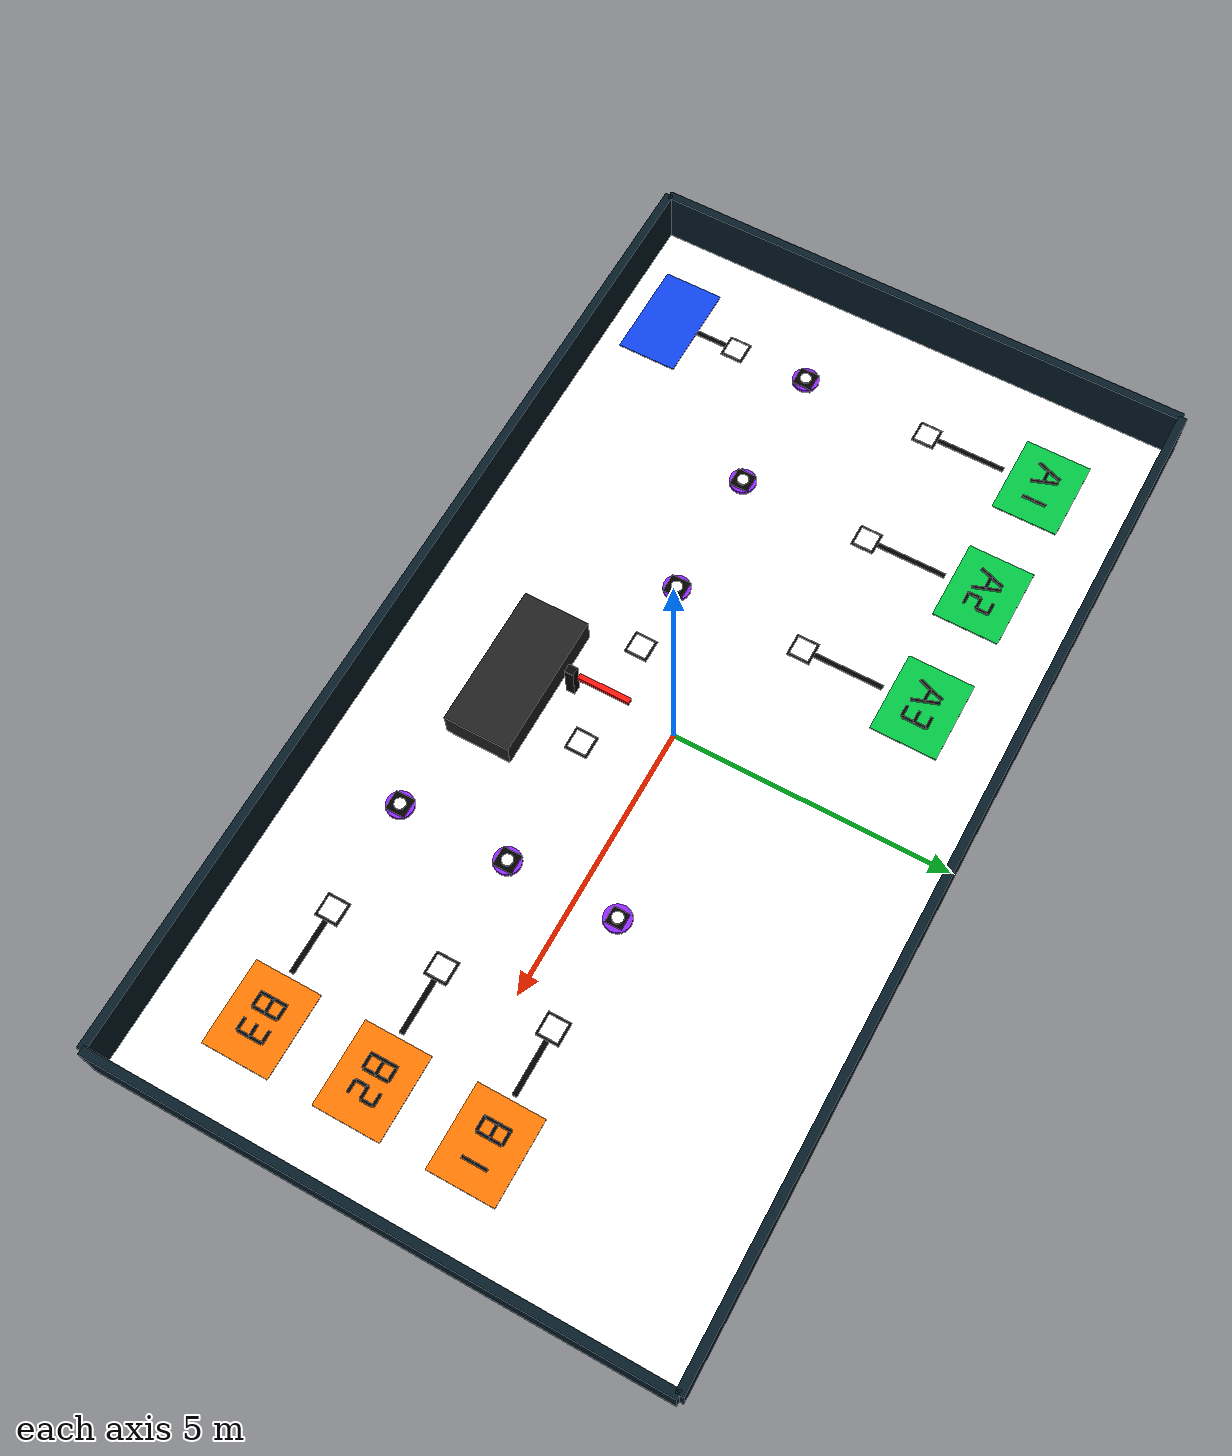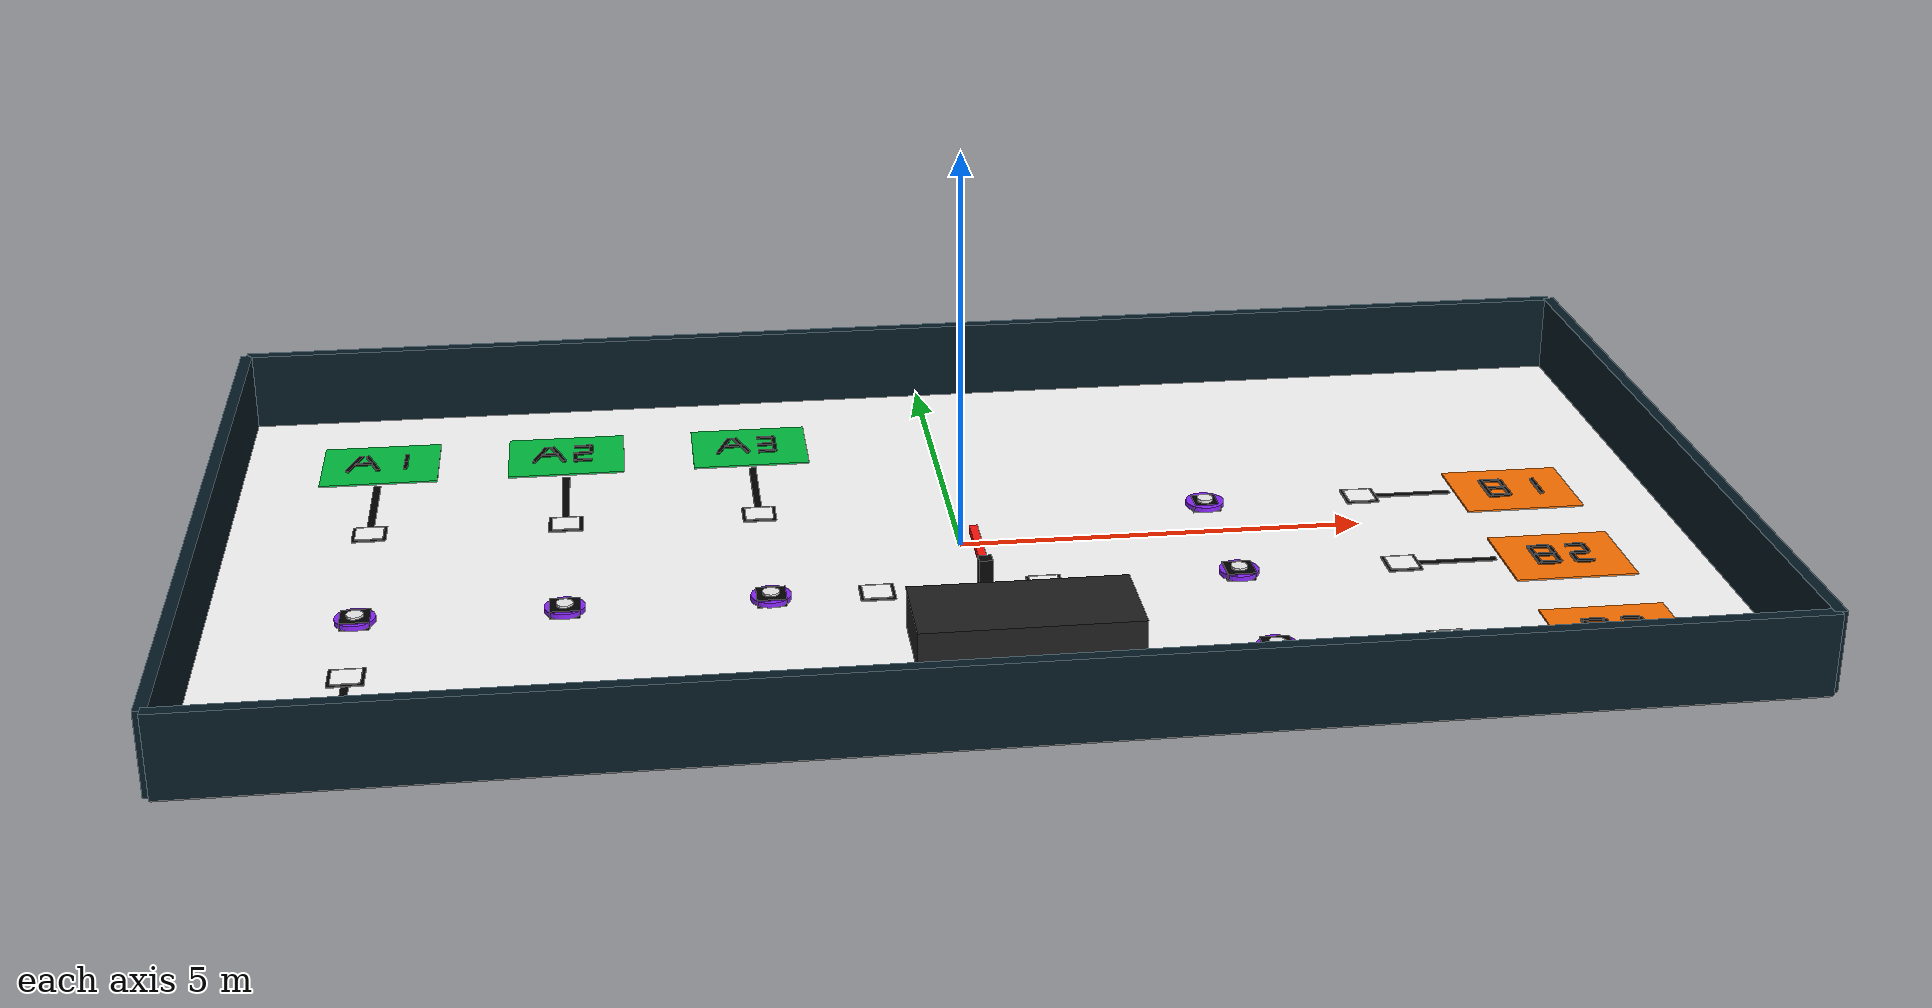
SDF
<?xml version="1.0" ?>
<sdf version="1.9">
  <world name="hamals_competition_world">
    <physics name="1ms" type="ignored">
      <max_step_size>0.001</max_step_size>
      <real_time_factor>1.0</real_time_factor>
    </physics>

    <plugin filename="gz-sim-physics-system" name="gz::sim::systems::Physics"/>
    <plugin filename="gz-sim-user-commands-system" name="gz::sim::systems::UserCommands"/>
    <plugin filename="gz-sim-scene-broadcaster-system" name="gz::sim::systems::SceneBroadcaster"/>

    <scene>
      <ambient>0.75 0.75 0.75 1</ambient>
      <background>0.85 0.85 0.85 1</background>
      <shadows>true</shadows>
    </scene>

    <light type="directional" name="sun">
      <cast_shadows>true</cast_shadows>
      <pose>0 0 10 0 0 0</pose>
      <diffuse>0.8 0.8 0.8 1</diffuse>
      <specular>0.2 0.2 0.2 1</specular>
      <attenuation>
        <range>1000</range>
        <constant>0.9</constant>
        <linear>0.01</linear>
        <quadratic>0.001</quadratic>
      </attenuation>
      <direction>-0.5 0.1 -0.9</direction>
    </light>

    <!-- ================= MATERIALS ================= -->
    <model name="materials_reference">
      <static>true</static>
      <link name="dummy"/>
    </model>

    <!-- ================= FLOOR ================= -->
    <model name="competition_floor">
      <static>true</static>
      <pose>0 0 -0.025 0 0 0</pose>
      <link name="link">
        <collision name="collision">
          <geometry>
            <box><size>18 10 0.05</size></box>
          </geometry>
        </collision>
        <visual name="visual">
          <geometry>
            <box><size>18 10 0.05</size></box>
          </geometry>
          <material>
            <ambient>1.0 1.0 1.0 1</ambient>
            <diffuse>1.0 1.0 1.0 1</diffuse>
          </material>
        </visual>
      </link>
    </model>

    <!-- ================= OUTER WALLS ================= -->
    <model name="outer_wall_north">
      <static>true</static>
      <pose>0 5 0.5 0 0 0</pose>
      <link name="link">
        <collision name="collision"><geometry><box><size>18 0.15 1</size></box></geometry></collision>
        <visual name="visual"><geometry><box><size>18 0.15 1</size></box></geometry>
          <material><ambient>0.02 0.10 0.14 1</ambient><diffuse>0.02 0.10 0.14 1</diffuse></material>
        </visual>
      </link>
    </model>

    <model name="outer_wall_south">
      <static>true</static>
      <pose>0 -5 0.5 0 0 0</pose>
      <link name="link">
        <collision name="collision"><geometry><box><size>18 0.15 1</size></box></geometry></collision>
        <visual name="visual"><geometry><box><size>18 0.15 1</size></box></geometry>
          <material><ambient>0.02 0.10 0.14 1</ambient><diffuse>0.02 0.10 0.14 1</diffuse></material>
        </visual>
      </link>
    </model>

    <model name="outer_wall_west">
      <static>true</static>
      <pose>-9 0 0.5 0 0 0</pose>
      <link name="link">
        <collision name="collision"><geometry><box><size>0.15 10 1</size></box></geometry></collision>
        <visual name="visual"><geometry><box><size>0.15 10 1</size></box></geometry>
          <material><ambient>0.02 0.10 0.14 1</ambient><diffuse>0.02 0.10 0.14 1</diffuse></material>
        </visual>
      </link>
    </model>

    <model name="outer_wall_east">
      <static>true</static>
      <pose>9 0 0.5 0 0 0</pose>
      <link name="link">
        <collision name="collision"><geometry><box><size>0.15 10 1</size></box></geometry></collision>
        <visual name="visual"><geometry><box><size>0.15 10 1</size></box></geometry>
          <material><ambient>0.02 0.10 0.14 1</ambient><diffuse>0.02 0.10 0.14 1</diffuse></material>
        </visual>
      </link>
    </model>

    <!-- ================= WHITE ROUTE LINES, NOT DASHED ================= -->
    <!-- Left vertical route -->

    <!-- Middle horizontal route -->

    <!-- A2 and A3 branches -->

    <!-- Right vertical route -->

    <!-- B branches -->

    <!-- ================= START / PICKUP / DROP AREAS ================= -->
    <!-- Start area: blue -->
    <model name="start_area">
      <static>true</static>
      <pose>-7.2 -4.0 0.01 0 0 0</pose>
      <link name="link">
        <collision name="collision"><geometry><box><size>1.8 1.1 0.02</size></box></geometry></collision>
        <visual name="visual"><geometry><box><size>1.8 1.1 0.02</size></box></geometry>
          <material><ambient>0.05 0.25 0.9 1</ambient><diffuse>0.05 0.25 0.9 1</diffuse></material>
        </visual>
      </link>
    </model>

    <!-- Pickup areas A1-A3: green -->
    <model name="pickup_A1">
      <static>true</static>
      <pose>-7.2 3.35 0.01 0 0 0</pose>
      <link name="link">
        <collision name="collision"><geometry><box><size>1.5 1.2 0.02</size></box></geometry></collision>
        <visual name="visual"><geometry><box><size>1.5 1.2 0.02</size></box></geometry>
          <material><ambient>0.0 0.75 0.25 1</ambient><diffuse>0.0 0.75 0.25 1</diffuse></material>
        </visual>
      </link>
    </model>

    <model name="pickup_A2">
      <static>true</static>
      <pose>-4.8 3.35 0.01 0 0 0</pose>
      <link name="link">
        <collision name="collision"><geometry><box><size>1.5 1.2 0.02</size></box></geometry></collision>
        <visual name="visual"><geometry><box><size>1.5 1.2 0.02</size></box></geometry>
          <material><ambient>0.0 0.75 0.25 1</ambient><diffuse>0.0 0.75 0.25 1</diffuse></material>
        </visual>
      </link>
    </model>

    <model name="pickup_A3">
      <static>true</static>
      <pose>-2.4 3.35 0.01 0 0 0</pose>
      <link name="link">
        <collision name="collision"><geometry><box><size>1.5 1.2 0.02</size></box></geometry></collision>
        <visual name="visual"><geometry><box><size>1.5 1.2 0.02</size></box></geometry>
          <material><ambient>0.0 0.75 0.25 1</ambient><diffuse>0.0 0.75 0.25 1</diffuse></material>
        </visual>
      </link>
    </model>

    <!-- Drop areas B1-B3: orange -->

    <model name="drop_B1">
      <static>true</static>
      <pose>7.200 0.750 0.010 0 0 0</pose>
      <link name="link">
        <collision name="collision">
          <geometry>
            <box><size>1.500 1.200 0.020</size></box>
          </geometry>
        </collision>
        <visual name="visual">
          <geometry>
            <box><size>1.500 1.200 0.020</size></box>
          </geometry>
          <material>
            <ambient>1.0 0.45 0.0 1</ambient>
            <diffuse>1.0 0.45 0.0 1</diffuse>
          </material>
        </visual>
      </link>
    </model>

    <model name="drop_B2">
      <static>true</static>
      <pose>7.2 -1.25 0.01 0 0 0</pose>
      <link name="link">
        <collision name="collision"><geometry><box><size>1.5 1.2 0.02</size></box></geometry></collision>
        <visual name="visual"><geometry><box><size>1.5 1.2 0.02</size></box></geometry>
          <material><ambient>1.0 0.45 0.0 1</ambient><diffuse>1.0 0.45 0.0 1</diffuse></material>
        </visual>
      </link>
    </model>

    <model name="drop_B3">
      <static>true</static>
      <pose>7.2 -3.25 0.01 0 0 0</pose>
      <link name="link">
        <collision name="collision"><geometry><box><size>1.5 1.2 0.02</size></box></geometry></collision>
        <visual name="visual"><geometry><box><size>1.5 1.2 0.02</size></box></geometry>
          <material><ambient>1.0 0.45 0.0 1</ambient><diffuse>1.0 0.45 0.0 1</diffuse></material>
        </visual>
      </link>
    </model>

    <!-- ================= COLORED NODE MARKERS ================= -->
    <!-- D nodes are shown as purple circular disks, visually different from QR placeholders. -->

    <model name="D1_node_marker">
      <static>true</static>
      <pose>-7.200 -1.250 0.055 0 0 0</pose>
      <link name="link">
        <visual name="visual">
          <geometry>
            <cylinder><radius>0.240</radius><length>0.060</length></cylinder>
          </geometry>
          <material>
            <ambient>0.55 0.15 1.0 1</ambient>
            <diffuse>0.55 0.15 1.0 1</diffuse>
          </material>
        </visual>
      </link>
    </model>

    <model name="D1_node_center">
      <static>true</static>
      <pose>-7.200 -1.250 0.105 0 0 0</pose>
      <link name="link">
        <visual name="visual">
          <geometry>
            <cylinder><radius>0.100</radius><length>0.040</length></cylinder>
          </geometry>
          <material>
            <ambient>0.95 0.95 0.95 1</ambient>
            <diffuse>0.95 0.95 0.95 1</diffuse>
          </material>
        </visual>
      </link>
    </model>

    <model name="D2_node_marker">
      <static>true</static>
      <pose>-4.800 -1.250 0.055 0 0 0</pose>
      <link name="link">
        <visual name="visual">
          <geometry>
            <cylinder><radius>0.240</radius><length>0.060</length></cylinder>
          </geometry>
          <material>
            <ambient>0.55 0.15 1.0 1</ambient>
            <diffuse>0.55 0.15 1.0 1</diffuse>
          </material>
        </visual>
      </link>
    </model>

    <model name="D2_node_center">
      <static>true</static>
      <pose>-4.800 -1.250 0.105 0 0 0</pose>
      <link name="link">
        <visual name="visual">
          <geometry>
            <cylinder><radius>0.100</radius><length>0.040</length></cylinder>
          </geometry>
          <material>
            <ambient>0.95 0.95 0.95 1</ambient>
            <diffuse>0.95 0.95 0.95 1</diffuse>
          </material>
        </visual>
      </link>
    </model>

    <model name="D3_node_marker">
      <static>true</static>
      <pose>-2.400 -1.250 0.055 0 0 0</pose>
      <link name="link">
        <visual name="visual">
          <geometry>
            <cylinder><radius>0.240</radius><length>0.060</length></cylinder>
          </geometry>
          <material>
            <ambient>0.55 0.15 1.0 1</ambient>
            <diffuse>0.55 0.15 1.0 1</diffuse>
          </material>
        </visual>
      </link>
    </model>

    <model name="D3_node_center">
      <static>true</static>
      <pose>-2.400 -1.250 0.105 0 0 0</pose>
      <link name="link">
        <visual name="visual">
          <geometry>
            <cylinder><radius>0.100</radius><length>0.040</length></cylinder>
          </geometry>
          <material>
            <ambient>0.95 0.95 0.95 1</ambient>
            <diffuse>0.95 0.95 0.95 1</diffuse>
          </material>
        </visual>
      </link>
    </model>

    <model name="D4_node_marker">
      <static>true</static>
      <pose>3.200 -1.250 0.055 0 0 0</pose>
      <link name="link">
        <visual name="visual">
          <geometry>
            <cylinder><radius>0.240</radius><length>0.060</length></cylinder>
          </geometry>
          <material>
            <ambient>0.55 0.15 1.0 1</ambient>
            <diffuse>0.55 0.15 1.0 1</diffuse>
          </material>
        </visual>
      </link>
    </model>

    <model name="D4_node_center">
      <static>true</static>
      <pose>3.200 -1.250 0.105 0 0 0</pose>
      <link name="link">
        <visual name="visual">
          <geometry>
            <cylinder><radius>0.100</radius><length>0.040</length></cylinder>
          </geometry>
          <material>
            <ambient>0.95 0.95 0.95 1</ambient>
            <diffuse>0.95 0.95 0.95 1</diffuse>
          </material>
        </visual>
      </link>
    </model>

    <model name="D6_node_marker">
      <static>true</static>
      <pose>3.200 -3.250 0.055 0 0 0</pose>
      <link name="link">
        <visual name="visual">
          <geometry>
            <cylinder><radius>0.240</radius><length>0.060</length></cylinder>
          </geometry>
          <material>
            <ambient>0.55 0.15 1.0 1</ambient>
            <diffuse>0.55 0.15 1.0 1</diffuse>
          </material>
        </visual>
      </link>
    </model>

    <model name="D6_node_center">
      <static>true</static>
      <pose>3.200 -3.250 0.105 0 0 0</pose>
      <link name="link">
        <visual name="visual">
          <geometry>
            <cylinder><radius>0.100</radius><length>0.040</length></cylinder>
          </geometry>
          <material>
            <ambient>0.95 0.95 0.95 1</ambient>
            <diffuse>0.95 0.95 0.95 1</diffuse>
          </material>
        </visual>
      </link>
    </model>

    <!-- ================= SOLID WHITE ALIGNMENT LINES ONLY ================= -->
    <!-- No dashed route network. Lines exist only between QR markers and pickup/drop/start areas. -->

    <model name="align_start_to_q1">
      <static>true</static>
      <pose>-7.200 -3.050 0.024 0 0 0</pose>
      <link name="link">
        <visual name="visual">
          <geometry><box><size>0.090 0.800 0.012</size></box></geometry>
          <material>
            <ambient>0 0 0 1</ambient>
            <diffuse>0 0 0 1</diffuse>
          </material>
        </visual>
      </link>
    </model>

    <model name="align_q2_to_A1">
      <static>true</static>
      <pose>-7.200 1.950 0.024 0 0 0</pose>
      <link name="link">
        <visual name="visual">
          <geometry><box><size>0.090 1.350 0.012</size></box></geometry>
          <material>
            <ambient>0 0 0 1</ambient>
            <diffuse>0 0 0 1</diffuse>
          </material>
        </visual>
      </link>
    </model>

    <model name="align_q3_to_A2">
      <static>true</static>
      <pose>-4.800 1.950 0.024 0 0 0</pose>
      <link name="link">
        <visual name="visual">
          <geometry><box><size>0.090 1.350 0.012</size></box></geometry>
          <material>
            <ambient>0 0 0 1</ambient>
            <diffuse>0 0 0 1</diffuse>
          </material>
        </visual>
      </link>
    </model>

    <model name="align_q4_to_A3">
      <static>true</static>
      <pose>-2.400 1.950 0.024 0 0 0</pose>
      <link name="link">
        <visual name="visual">
          <geometry><box><size>0.090 1.350 0.012</size></box></geometry>
          <material>
            <ambient>0 0 0 1</ambient>
            <diffuse>0 0 0 1</diffuse>
          </material>
        </visual>
      </link>
    </model>

    <model name="align_q8_to_B2">
      <static>true</static>
      <pose>5.850 -1.250 0.024 0 0 0</pose>
      <link name="link">
        <visual name="visual">
          <geometry><box><size>1.050 0.090 0.012</size></box></geometry>
          <material>
            <ambient>0 0 0 1</ambient>
            <diffuse>0 0 0 1</diffuse>
          </material>
        </visual>
      </link>
    </model>

    <model name="align_q7_to_B3">
      <static>true</static>
      <pose>5.850 -3.250 0.024 0 0 0</pose>
      <link name="link">
        <visual name="visual">
          <geometry><box><size>1.050 0.090 0.012</size></box></geometry>
          <material>
            <ambient>0 0 0 1</ambient>
            <diffuse>0 0 0 1</diffuse>
          </material>
        </visual>
      </link>
    </model>

    <!-- ================= QR PLACEHOLDER MARKERS ================= -->
    <!-- White squares are placeholders for future QR texture models q1-q9. They are placed between nodes and pickup/drop areas. -->

    <model name="q1_qr_border">
      <static>true</static>
      <pose>-7.200 -2.650 0.031 0 0 0</pose>
      <link name="link">
        <visual name="visual">
          <geometry><box><size>0.420 0.420 0.012</size></box></geometry>
          <material>
            <ambient>0.0 0.0 0.0 1</ambient>
            <diffuse>0.0 0.0 0.0 1</diffuse>
          </material>
        </visual>
      </link>
    </model>

    <model name="q1_qr_placeholder">
      <static>true</static>
      <pose>-7.200 -2.650 0.042 0 0 0</pose>
      <link name="link">
        <visual name="visual">
          <geometry><box><size>0.340 0.340 0.014</size></box></geometry>
          <material>
            <ambient>1.0 1.0 1.0 1</ambient>
            <diffuse>1.0 1.0 1.0 1</diffuse>
          </material>
        </visual>
      </link>
    </model>

    <model name="q2_qr_border">
      <static>true</static>
      <pose>-7.200 1.150 0.031 0 0 0</pose>
      <link name="link">
        <visual name="visual">
          <geometry><box><size>0.420 0.420 0.012</size></box></geometry>
          <material>
            <ambient>0.0 0.0 0.0 1</ambient>
            <diffuse>0.0 0.0 0.0 1</diffuse>
          </material>
        </visual>
      </link>
    </model>

    <model name="q2_qr_placeholder">
      <static>true</static>
      <pose>-7.200 1.150 0.042 0 0 0</pose>
      <link name="link">
        <visual name="visual">
          <geometry><box><size>0.340 0.340 0.014</size></box></geometry>
          <material>
            <ambient>1.0 1.0 1.0 1</ambient>
            <diffuse>1.0 1.0 1.0 1</diffuse>
          </material>
        </visual>
      </link>
    </model>

    <model name="q3_qr_border">
      <static>true</static>
      <pose>-4.800 1.150 0.031 0 0 0</pose>
      <link name="link">
        <visual name="visual">
          <geometry><box><size>0.420 0.420 0.012</size></box></geometry>
          <material>
            <ambient>0.0 0.0 0.0 1</ambient>
            <diffuse>0.0 0.0 0.0 1</diffuse>
          </material>
        </visual>
      </link>
    </model>

    <model name="q3_qr_placeholder">
      <static>true</static>
      <pose>-4.800 1.150 0.042 0 0 0</pose>
      <link name="link">
        <visual name="visual">
          <geometry><box><size>0.340 0.340 0.014</size></box></geometry>
          <material>
            <ambient>1.0 1.0 1.0 1</ambient>
            <diffuse>1.0 1.0 1.0 1</diffuse>
          </material>
        </visual>
      </link>
    </model>

    <model name="q4_qr_border">
      <static>true</static>
      <pose>-2.400 1.150 0.031 0 0 0</pose>
      <link name="link">
        <visual name="visual">
          <geometry><box><size>0.420 0.420 0.012</size></box></geometry>
          <material>
            <ambient>0.0 0.0 0.0 1</ambient>
            <diffuse>0.0 0.0 0.0 1</diffuse>
          </material>
        </visual>
      </link>
    </model>

    <model name="q4_qr_placeholder">
      <static>true</static>
      <pose>-2.400 1.150 0.042 0 0 0</pose>
      <link name="link">
        <visual name="visual">
          <geometry><box><size>0.340 0.340 0.014</size></box></geometry>
          <material>
            <ambient>1.0 1.0 1.0 1</ambient>
            <diffuse>1.0 1.0 1.0 1</diffuse>
          </material>
        </visual>
      </link>
    </model>

    <model name="q5_qr_border">
      <static>true</static>
      <pose>-1.150 -1.250 0.031 0 0 0</pose>
      <link name="link">
        <visual name="visual">
          <geometry><box><size>0.420 0.420 0.012</size></box></geometry>
          <material>
            <ambient>0.0 0.0 0.0 1</ambient>
            <diffuse>0.0 0.0 0.0 1</diffuse>
          </material>
        </visual>
      </link>
    </model>

    <model name="q5_qr_placeholder">
      <static>true</static>
      <pose>-1.150 -1.250 0.042 0 0 0</pose>
      <link name="link">
        <visual name="visual">
          <geometry><box><size>0.340 0.340 0.014</size></box></geometry>
          <material>
            <ambient>1.0 1.0 1.0 1</ambient>
            <diffuse>1.0 1.0 1.0 1</diffuse>
          </material>
        </visual>
      </link>
    </model>

    <model name="q6_qr_border">
      <static>true</static>
      <pose>0.850 -1.250 0.031 0 0 0</pose>
      <link name="link">
        <visual name="visual">
          <geometry><box><size>0.420 0.420 0.012</size></box></geometry>
          <material>
            <ambient>0.0 0.0 0.0 1</ambient>
            <diffuse>0.0 0.0 0.0 1</diffuse>
          </material>
        </visual>
      </link>
    </model>

    <model name="q6_qr_placeholder">
      <static>true</static>
      <pose>0.850 -1.250 0.042 0 0 0</pose>
      <link name="link">
        <visual name="visual">
          <geometry><box><size>0.340 0.340 0.014</size></box></geometry>
          <material>
            <ambient>1.0 1.0 1.0 1</ambient>
            <diffuse>1.0 1.0 1.0 1</diffuse>
          </material>
        </visual>
      </link>
    </model>

    <model name="q7_qr_border">
      <static>true</static>
      <pose>5.200 -3.250 0.031 0 0 0</pose>
      <link name="link">
        <visual name="visual">
          <geometry><box><size>0.420 0.420 0.012</size></box></geometry>
          <material>
            <ambient>0.0 0.0 0.0 1</ambient>
            <diffuse>0.0 0.0 0.0 1</diffuse>
          </material>
        </visual>
      </link>
    </model>

    <model name="q7_qr_placeholder">
      <static>true</static>
      <pose>5.200 -3.250 0.042 0 0 0</pose>
      <link name="link">
        <visual name="visual">
          <geometry><box><size>0.340 0.340 0.014</size></box></geometry>
          <material>
            <ambient>1.0 1.0 1.0 1</ambient>
            <diffuse>1.0 1.0 1.0 1</diffuse>
          </material>
        </visual>
      </link>
    </model>

    <model name="q8_qr_border">
      <static>true</static>
      <pose>5.200 -1.250 0.031 0 0 0</pose>
      <link name="link">
        <visual name="visual">
          <geometry><box><size>0.420 0.420 0.012</size></box></geometry>
          <material>
            <ambient>0.0 0.0 0.0 1</ambient>
            <diffuse>0.0 0.0 0.0 1</diffuse>
          </material>
        </visual>
      </link>
    </model>

    <model name="q8_qr_placeholder">
      <static>true</static>
      <pose>5.200 -1.250 0.042 0 0 0</pose>
      <link name="link">
        <visual name="visual">
          <geometry><box><size>0.340 0.340 0.014</size></box></geometry>
          <material>
            <ambient>1.0 1.0 1.0 1</ambient>
            <diffuse>1.0 1.0 1.0 1</diffuse>
          </material>
        </visual>
      </link>
    </model>

    <model name="q9_qr_border">
      <static>true</static>
      <pose>5.200 0.750 0.031 0 0 0</pose>
      <link name="link">
        <visual name="visual">
          <geometry><box><size>0.420 0.420 0.012</size></box></geometry>
          <material>
            <ambient>0 0 0 1</ambient>
            <diffuse>0 0 0 1</diffuse>
          </material>
        </visual>
      </link>
    </model>

    <model name="q9_qr_placeholder">
      <static>true</static>
      <pose>5.200 0.750 0.042 0 0 0</pose>
      <link name="link">
        <visual name="visual">
          <geometry><box><size>0.340 0.340 0.014</size></box></geometry>
          <material>
            <ambient>1 1 1 1</ambient>
            <diffuse>1 1 1 1</diffuse>
          </material>
        </visual>
      </link>
    </model>

    <model name="align_q9_to_B1">
      <static>true</static>
      <pose>5.850 0.750 0.024 0 0 0</pose>
      <link name="link">
        <visual name="visual">
          <geometry><box><size>1.050 0.090 0.012</size></box></geometry>
          <material>
            <ambient>0 0 0 1</ambient>
            <diffuse>0 0 0 1</diffuse>
          </material>
        </visual>
      </link>
    </model>

    <model name="D5_node_marker">
      <static>true</static>
      <pose>3.200 0.750 0.055 0 0 0</pose>
      <link name="link">
        <visual name="visual">
          <geometry>
            <cylinder><radius>0.240</radius><length>0.060</length></cylinder>
          </geometry>
          <material>
            <ambient>0.55 0.15 1.0 1</ambient>
            <diffuse>0.55 0.15 1.0 1</diffuse>
          </material>
        </visual>
      </link>
    </model>

    <model name="D5_node_center">
      <static>true</static>
      <pose>3.200 0.750 0.105 0 0 0</pose>
      <link name="link">
        <visual name="visual">
          <geometry>
            <cylinder><radius>0.100</radius><length>0.040</length></cylinder>
          </geometry>
          <material>
            <ambient>0.95 0.95 0.95 1</ambient>
            <diffuse>0.95 0.95 0.95 1</diffuse>
          </material>
        </visual>
      </link>
    </model>

    <model name="D5_black_square_marker">
      <static>true</static>
      <pose>3.200 0.750 0.080 0 0 0</pose>
      <link name="link">
        <visual name="visual">
          <geometry>
            <box><size>0.300 0.300 0.020</size></box>
          </geometry>
          <material>
            <ambient>0 0 0 1</ambient>
            <diffuse>0 0 0 1</diffuse>
          </material>
        </visual>
      </link>
    </model>

    <!-- ================= AREA LABELS: A1 A2 A3 / B1 B2 B3 ================= -->
    <!-- Labels are drawn with thin black floor boxes instead of text geometry for maximum Gazebo compatibility. -->

    <model name="label_A1_A_left">
      <static>true</static>
      <pose>-7.537 3.350 0.045 0 0 -0.340000</pose>
      <link name="link">
        <visual name="visual">
          <geometry>
            <box><size>0.050 0.495 0.025</size></box>
          </geometry>
          <material>
            <ambient>0.0 0.0 0.0 1</ambient>
            <diffuse>0.0 0.0 0.0 1</diffuse>
          </material>
        </visual>
      </link>
    </model>

    <model name="label_A1_A_right">
      <static>true</static>
      <pose>-7.303 3.350 0.045 0 0 0.340000</pose>
      <link name="link">
        <visual name="visual">
          <geometry>
            <box><size>0.050 0.495 0.025</size></box>
          </geometry>
          <material>
            <ambient>0.0 0.0 0.0 1</ambient>
            <diffuse>0.0 0.0 0.0 1</diffuse>
          </material>
        </visual>
      </link>
    </model>

    <model name="label_A1_A_mid">
      <static>true</static>
      <pose>-7.420 3.332 0.047 0 0 0.000000</pose>
      <link name="link">
        <visual name="visual">
          <geometry>
            <box><size>0.225 0.050 0.025</size></box>
          </geometry>
          <material>
            <ambient>0.0 0.0 0.0 1</ambient>
            <diffuse>0.0 0.0 0.0 1</diffuse>
          </material>
        </visual>
      </link>
    </model>

    <model name="label_A1_1_b">
      <static>true</static>
      <pose>-6.872 3.462 0.045 0 0 0.000000</pose>
      <link name="link">
        <visual name="visual">
          <geometry>
            <box><size>0.050 0.225 0.025</size></box>
          </geometry>
          <material>
            <ambient>0.0 0.0 0.0 1</ambient>
            <diffuse>0.0 0.0 0.0 1</diffuse>
          </material>
        </visual>
      </link>
    </model>

    <model name="label_A1_1_c">
      <static>true</static>
      <pose>-6.872 3.238 0.045 0 0 0.000000</pose>
      <link name="link">
        <visual name="visual">
          <geometry>
            <box><size>0.050 0.225 0.025</size></box>
          </geometry>
          <material>
            <ambient>0.0 0.0 0.0 1</ambient>
            <diffuse>0.0 0.0 0.0 1</diffuse>
          </material>
        </visual>
      </link>
    </model>

    <model name="label_A2_A_left">
      <static>true</static>
      <pose>-5.137 3.350 0.045 0 0 -0.340000</pose>
      <link name="link">
        <visual name="visual">
          <geometry>
            <box><size>0.050 0.495 0.025</size></box>
          </geometry>
          <material>
            <ambient>0.0 0.0 0.0 1</ambient>
            <diffuse>0.0 0.0 0.0 1</diffuse>
          </material>
        </visual>
      </link>
    </model>

    <model name="label_A2_A_right">
      <static>true</static>
      <pose>-4.903 3.350 0.045 0 0 0.340000</pose>
      <link name="link">
        <visual name="visual">
          <geometry>
            <box><size>0.050 0.495 0.025</size></box>
          </geometry>
          <material>
            <ambient>0.0 0.0 0.0 1</ambient>
            <diffuse>0.0 0.0 0.0 1</diffuse>
          </material>
        </visual>
      </link>
    </model>

    <model name="label_A2_A_mid">
      <static>true</static>
      <pose>-5.020 3.332 0.047 0 0 0.000000</pose>
      <link name="link">
        <visual name="visual">
          <geometry>
            <box><size>0.225 0.050 0.025</size></box>
          </geometry>
          <material>
            <ambient>0.0 0.0 0.0 1</ambient>
            <diffuse>0.0 0.0 0.0 1</diffuse>
          </material>
        </visual>
      </link>
    </model>

    <model name="label_A2_2_a">
      <static>true</static>
      <pose>-4.580 3.575 0.045 0 0 0.000000</pose>
      <link name="link">
        <visual name="visual">
          <geometry>
            <box><size>0.225 0.050 0.025</size></box>
          </geometry>
          <material>
            <ambient>0.0 0.0 0.0 1</ambient>
            <diffuse>0.0 0.0 0.0 1</diffuse>
          </material>
        </visual>
      </link>
    </model>

    <model name="label_A2_2_b">
      <static>true</static>
      <pose>-4.472 3.462 0.045 0 0 0.000000</pose>
      <link name="link">
        <visual name="visual">
          <geometry>
            <box><size>0.050 0.225 0.025</size></box>
          </geometry>
          <material>
            <ambient>0.0 0.0 0.0 1</ambient>
            <diffuse>0.0 0.0 0.0 1</diffuse>
          </material>
        </visual>
      </link>
    </model>

    <model name="label_A2_2_g">
      <static>true</static>
      <pose>-4.580 3.350 0.045 0 0 0.000000</pose>
      <link name="link">
        <visual name="visual">
          <geometry>
            <box><size>0.225 0.050 0.025</size></box>
          </geometry>
          <material>
            <ambient>0.0 0.0 0.0 1</ambient>
            <diffuse>0.0 0.0 0.0 1</diffuse>
          </material>
        </visual>
      </link>
    </model>

    <model name="label_A2_2_e">
      <static>true</static>
      <pose>-4.688 3.238 0.045 0 0 0.000000</pose>
      <link name="link">
        <visual name="visual">
          <geometry>
            <box><size>0.050 0.225 0.025</size></box>
          </geometry>
          <material>
            <ambient>0.0 0.0 0.0 1</ambient>
            <diffuse>0.0 0.0 0.0 1</diffuse>
          </material>
        </visual>
      </link>
    </model>

    <model name="label_A2_2_d">
      <static>true</static>
      <pose>-4.580 3.125 0.045 0 0 0.000000</pose>
      <link name="link">
        <visual name="visual">
          <geometry>
            <box><size>0.225 0.050 0.025</size></box>
          </geometry>
          <material>
            <ambient>0.0 0.0 0.0 1</ambient>
            <diffuse>0.0 0.0 0.0 1</diffuse>
          </material>
        </visual>
      </link>
    </model>

    <model name="label_A3_A_left">
      <static>true</static>
      <pose>-2.737 3.350 0.045 0 0 -0.340000</pose>
      <link name="link">
        <visual name="visual">
          <geometry>
            <box><size>0.050 0.495 0.025</size></box>
          </geometry>
          <material>
            <ambient>0.0 0.0 0.0 1</ambient>
            <diffuse>0.0 0.0 0.0 1</diffuse>
          </material>
        </visual>
      </link>
    </model>

    <model name="label_A3_A_right">
      <static>true</static>
      <pose>-2.503 3.350 0.045 0 0 0.340000</pose>
      <link name="link">
        <visual name="visual">
          <geometry>
            <box><size>0.050 0.495 0.025</size></box>
          </geometry>
          <material>
            <ambient>0.0 0.0 0.0 1</ambient>
            <diffuse>0.0 0.0 0.0 1</diffuse>
          </material>
        </visual>
      </link>
    </model>

    <model name="label_A3_A_mid">
      <static>true</static>
      <pose>-2.620 3.332 0.047 0 0 0.000000</pose>
      <link name="link">
        <visual name="visual">
          <geometry>
            <box><size>0.225 0.050 0.025</size></box>
          </geometry>
          <material>
            <ambient>0.0 0.0 0.0 1</ambient>
            <diffuse>0.0 0.0 0.0 1</diffuse>
          </material>
        </visual>
      </link>
    </model>

    <model name="label_A3_3_a">
      <static>true</static>
      <pose>-2.180 3.575 0.045 0 0 0.000000</pose>
      <link name="link">
        <visual name="visual">
          <geometry>
            <box><size>0.225 0.050 0.025</size></box>
          </geometry>
          <material>
            <ambient>0.0 0.0 0.0 1</ambient>
            <diffuse>0.0 0.0 0.0 1</diffuse>
          </material>
        </visual>
      </link>
    </model>

    <model name="label_A3_3_b">
      <static>true</static>
      <pose>-2.072 3.462 0.045 0 0 0.000000</pose>
      <link name="link">
        <visual name="visual">
          <geometry>
            <box><size>0.050 0.225 0.025</size></box>
          </geometry>
          <material>
            <ambient>0.0 0.0 0.0 1</ambient>
            <diffuse>0.0 0.0 0.0 1</diffuse>
          </material>
        </visual>
      </link>
    </model>

    <model name="label_A3_3_g">
      <static>true</static>
      <pose>-2.180 3.350 0.045 0 0 0.000000</pose>
      <link name="link">
        <visual name="visual">
          <geometry>
            <box><size>0.225 0.050 0.025</size></box>
          </geometry>
          <material>
            <ambient>0.0 0.0 0.0 1</ambient>
            <diffuse>0.0 0.0 0.0 1</diffuse>
          </material>
        </visual>
      </link>
    </model>

    <model name="label_A3_3_c">
      <static>true</static>
      <pose>-2.072 3.238 0.045 0 0 0.000000</pose>
      <link name="link">
        <visual name="visual">
          <geometry>
            <box><size>0.050 0.225 0.025</size></box>
          </geometry>
          <material>
            <ambient>0.0 0.0 0.0 1</ambient>
            <diffuse>0.0 0.0 0.0 1</diffuse>
          </material>
        </visual>
      </link>
    </model>

    <model name="label_A3_3_d">
      <static>true</static>
      <pose>-2.180 3.125 0.045 0 0 0.000000</pose>
      <link name="link">
        <visual name="visual">
          <geometry>
            <box><size>0.225 0.050 0.025</size></box>
          </geometry>
          <material>
            <ambient>0.0 0.0 0.0 1</ambient>
            <diffuse>0.0 0.0 0.0 1</diffuse>
          </material>
        </visual>
      </link>
    </model>

    <model name="label_B2_B_left">
      <static>true</static>
      <pose>6.854 -1.250 0.045 0 0 0.000000</pose>
      <link name="link">
        <visual name="visual">
          <geometry>
            <box><size>0.050 0.495 0.025</size></box>
          </geometry>
          <material>
            <ambient>0.0 0.0 0.0 1</ambient>
            <diffuse>0.0 0.0 0.0 1</diffuse>
          </material>
        </visual>
      </link>
    </model>

    <model name="label_B2_B_top">
      <static>true</static>
      <pose>6.980 -1.025 0.045 0 0 0.000000</pose>
      <link name="link">
        <visual name="visual">
          <geometry>
            <box><size>0.252 0.050 0.025</size></box>
          </geometry>
          <material>
            <ambient>0.0 0.0 0.0 1</ambient>
            <diffuse>0.0 0.0 0.0 1</diffuse>
          </material>
        </visual>
      </link>
    </model>

    <model name="label_B2_B_mid">
      <static>true</static>
      <pose>6.980 -1.250 0.045 0 0 0.000000</pose>
      <link name="link">
        <visual name="visual">
          <geometry>
            <box><size>0.252 0.050 0.025</size></box>
          </geometry>
          <material>
            <ambient>0.0 0.0 0.0 1</ambient>
            <diffuse>0.0 0.0 0.0 1</diffuse>
          </material>
        </visual>
      </link>
    </model>

    <model name="label_B2_B_bot">
      <static>true</static>
      <pose>6.980 -1.475 0.045 0 0 0.000000</pose>
      <link name="link">
        <visual name="visual">
          <geometry>
            <box><size>0.252 0.050 0.025</size></box>
          </geometry>
          <material>
            <ambient>0.0 0.0 0.0 1</ambient>
            <diffuse>0.0 0.0 0.0 1</diffuse>
          </material>
        </visual>
      </link>
    </model>

    <model name="label_B2_B_ur">
      <static>true</static>
      <pose>7.106 -1.137 0.045 0 0 0.000000</pose>
      <link name="link">
        <visual name="visual">
          <geometry>
            <box><size>0.050 0.225 0.025</size></box>
          </geometry>
          <material>
            <ambient>0.0 0.0 0.0 1</ambient>
            <diffuse>0.0 0.0 0.0 1</diffuse>
          </material>
        </visual>
      </link>
    </model>

    <model name="label_B2_B_lr">
      <static>true</static>
      <pose>7.106 -1.363 0.045 0 0 0.000000</pose>
      <link name="link">
        <visual name="visual">
          <geometry>
            <box><size>0.050 0.225 0.025</size></box>
          </geometry>
          <material>
            <ambient>0.0 0.0 0.0 1</ambient>
            <diffuse>0.0 0.0 0.0 1</diffuse>
          </material>
        </visual>
      </link>
    </model>

    <model name="label_B2_2_a">
      <static>true</static>
      <pose>7.420 -1.025 0.045 0 0 0.000000</pose>
      <link name="link">
        <visual name="visual">
          <geometry>
            <box><size>0.225 0.050 0.025</size></box>
          </geometry>
          <material>
            <ambient>0.0 0.0 0.0 1</ambient>
            <diffuse>0.0 0.0 0.0 1</diffuse>
          </material>
        </visual>
      </link>
    </model>

    <model name="label_B2_2_b">
      <static>true</static>
      <pose>7.528 -1.137 0.045 0 0 0.000000</pose>
      <link name="link">
        <visual name="visual">
          <geometry>
            <box><size>0.050 0.225 0.025</size></box>
          </geometry>
          <material>
            <ambient>0.0 0.0 0.0 1</ambient>
            <diffuse>0.0 0.0 0.0 1</diffuse>
          </material>
        </visual>
      </link>
    </model>

    <model name="label_B2_2_g">
      <static>true</static>
      <pose>7.420 -1.250 0.045 0 0 0.000000</pose>
      <link name="link">
        <visual name="visual">
          <geometry>
            <box><size>0.225 0.050 0.025</size></box>
          </geometry>
          <material>
            <ambient>0.0 0.0 0.0 1</ambient>
            <diffuse>0.0 0.0 0.0 1</diffuse>
          </material>
        </visual>
      </link>
    </model>

    <model name="label_B2_2_e">
      <static>true</static>
      <pose>7.312 -1.363 0.045 0 0 0.000000</pose>
      <link name="link">
        <visual name="visual">
          <geometry>
            <box><size>0.050 0.225 0.025</size></box>
          </geometry>
          <material>
            <ambient>0.0 0.0 0.0 1</ambient>
            <diffuse>0.0 0.0 0.0 1</diffuse>
          </material>
        </visual>
      </link>
    </model>

    <model name="label_B2_2_d">
      <static>true</static>
      <pose>7.420 -1.475 0.045 0 0 0.000000</pose>
      <link name="link">
        <visual name="visual">
          <geometry>
            <box><size>0.225 0.050 0.025</size></box>
          </geometry>
          <material>
            <ambient>0.0 0.0 0.0 1</ambient>
            <diffuse>0.0 0.0 0.0 1</diffuse>
          </material>
        </visual>
      </link>
    </model>

    <model name="label_B3_B_left">
      <static>true</static>
      <pose>6.854 -3.250 0.045 0 0 0.000000</pose>
      <link name="link">
        <visual name="visual">
          <geometry>
            <box><size>0.050 0.495 0.025</size></box>
          </geometry>
          <material>
            <ambient>0.0 0.0 0.0 1</ambient>
            <diffuse>0.0 0.0 0.0 1</diffuse>
          </material>
        </visual>
      </link>
    </model>

    <model name="label_B3_B_top">
      <static>true</static>
      <pose>6.980 -3.025 0.045 0 0 0.000000</pose>
      <link name="link">
        <visual name="visual">
          <geometry>
            <box><size>0.252 0.050 0.025</size></box>
          </geometry>
          <material>
            <ambient>0.0 0.0 0.0 1</ambient>
            <diffuse>0.0 0.0 0.0 1</diffuse>
          </material>
        </visual>
      </link>
    </model>

    <model name="label_B3_B_mid">
      <static>true</static>
      <pose>6.980 -3.250 0.045 0 0 0.000000</pose>
      <link name="link">
        <visual name="visual">
          <geometry>
            <box><size>0.252 0.050 0.025</size></box>
          </geometry>
          <material>
            <ambient>0.0 0.0 0.0 1</ambient>
            <diffuse>0.0 0.0 0.0 1</diffuse>
          </material>
        </visual>
      </link>
    </model>

    <model name="label_B3_B_bot">
      <static>true</static>
      <pose>6.980 -3.475 0.045 0 0 0.000000</pose>
      <link name="link">
        <visual name="visual">
          <geometry>
            <box><size>0.252 0.050 0.025</size></box>
          </geometry>
          <material>
            <ambient>0.0 0.0 0.0 1</ambient>
            <diffuse>0.0 0.0 0.0 1</diffuse>
          </material>
        </visual>
      </link>
    </model>

    <model name="label_B3_B_ur">
      <static>true</static>
      <pose>7.106 -3.138 0.045 0 0 0.000000</pose>
      <link name="link">
        <visual name="visual">
          <geometry>
            <box><size>0.050 0.225 0.025</size></box>
          </geometry>
          <material>
            <ambient>0.0 0.0 0.0 1</ambient>
            <diffuse>0.0 0.0 0.0 1</diffuse>
          </material>
        </visual>
      </link>
    </model>

    <model name="label_B3_B_lr">
      <static>true</static>
      <pose>7.106 -3.362 0.045 0 0 0.000000</pose>
      <link name="link">
        <visual name="visual">
          <geometry>
            <box><size>0.050 0.225 0.025</size></box>
          </geometry>
          <material>
            <ambient>0.0 0.0 0.0 1</ambient>
            <diffuse>0.0 0.0 0.0 1</diffuse>
          </material>
        </visual>
      </link>
    </model>

    <model name="label_B3_3_a">
      <static>true</static>
      <pose>7.420 -3.025 0.045 0 0 0.000000</pose>
      <link name="link">
        <visual name="visual">
          <geometry>
            <box><size>0.225 0.050 0.025</size></box>
          </geometry>
          <material>
            <ambient>0.0 0.0 0.0 1</ambient>
            <diffuse>0.0 0.0 0.0 1</diffuse>
          </material>
        </visual>
      </link>
    </model>

    <model name="label_B3_3_b">
      <static>true</static>
      <pose>7.528 -3.138 0.045 0 0 0.000000</pose>
      <link name="link">
        <visual name="visual">
          <geometry>
            <box><size>0.050 0.225 0.025</size></box>
          </geometry>
          <material>
            <ambient>0.0 0.0 0.0 1</ambient>
            <diffuse>0.0 0.0 0.0 1</diffuse>
          </material>
        </visual>
      </link>
    </model>

    <model name="label_B3_3_g">
      <static>true</static>
      <pose>7.420 -3.250 0.045 0 0 0.000000</pose>
      <link name="link">
        <visual name="visual">
          <geometry>
            <box><size>0.225 0.050 0.025</size></box>
          </geometry>
          <material>
            <ambient>0.0 0.0 0.0 1</ambient>
            <diffuse>0.0 0.0 0.0 1</diffuse>
          </material>
        </visual>
      </link>
    </model>

    <model name="label_B3_3_c">
      <static>true</static>
      <pose>7.528 -3.362 0.045 0 0 0.000000</pose>
      <link name="link">
        <visual name="visual">
          <geometry>
            <box><size>0.050 0.225 0.025</size></box>
          </geometry>
          <material>
            <ambient>0.0 0.0 0.0 1</ambient>
            <diffuse>0.0 0.0 0.0 1</diffuse>
          </material>
        </visual>
      </link>
    </model>

    <model name="label_B3_3_d">
      <static>true</static>
      <pose>7.420 -3.475 0.045 0 0 0.000000</pose>
      <link name="link">
        <visual name="visual">
          <geometry>
            <box><size>0.225 0.050 0.025</size></box>
          </geometry>
          <material>
            <ambient>0.0 0.0 0.0 1</ambient>
            <diffuse>0.0 0.0 0.0 1</diffuse>
          </material>
        </visual>
      </link>
    </model>

    <model name="label_B1_B_left">
      <static>true</static>
      <pose>6.854 0.750 0.045 0 0 0.000000</pose>
      <link name="link">
        <visual name="visual">
          <geometry>
            <box><size>0.050 0.495 0.025</size></box>
          </geometry>
          <material>
            <ambient>0 0 0 1</ambient>
            <diffuse>0 0 0 1</diffuse>
          </material>
        </visual>
      </link>
    </model>

    <model name="label_B1_B_top">
      <static>true</static>
      <pose>6.980 0.975 0.045 0 0 0.000000</pose>
      <link name="link">
        <visual name="visual">
          <geometry>
            <box><size>0.252 0.050 0.025</size></box>
          </geometry>
          <material>
            <ambient>0 0 0 1</ambient>
            <diffuse>0 0 0 1</diffuse>
          </material>
        </visual>
      </link>
    </model>

    <model name="label_B1_B_mid">
      <static>true</static>
      <pose>6.980 0.750 0.045 0 0 0.000000</pose>
      <link name="link">
        <visual name="visual">
          <geometry>
            <box><size>0.252 0.050 0.025</size></box>
          </geometry>
          <material>
            <ambient>0 0 0 1</ambient>
            <diffuse>0 0 0 1</diffuse>
          </material>
        </visual>
      </link>
    </model>

    <model name="label_B1_B_bot">
      <static>true</static>
      <pose>6.980 0.525 0.045 0 0 0.000000</pose>
      <link name="link">
        <visual name="visual">
          <geometry>
            <box><size>0.252 0.050 0.025</size></box>
          </geometry>
          <material>
            <ambient>0 0 0 1</ambient>
            <diffuse>0 0 0 1</diffuse>
          </material>
        </visual>
      </link>
    </model>

    <model name="label_B1_B_ur">
      <static>true</static>
      <pose>7.106 0.863 0.045 0 0 0.000000</pose>
      <link name="link">
        <visual name="visual">
          <geometry>
            <box><size>0.050 0.225 0.025</size></box>
          </geometry>
          <material>
            <ambient>0 0 0 1</ambient>
            <diffuse>0 0 0 1</diffuse>
          </material>
        </visual>
      </link>
    </model>

    <model name="label_B1_B_lr">
      <static>true</static>
      <pose>7.106 0.637 0.045 0 0 0.000000</pose>
      <link name="link">
        <visual name="visual">
          <geometry>
            <box><size>0.050 0.225 0.025</size></box>
          </geometry>
          <material>
            <ambient>0 0 0 1</ambient>
            <diffuse>0 0 0 1</diffuse>
          </material>
        </visual>
      </link>
    </model>

    <model name="label_B1_1_b">
      <static>true</static>
      <pose>7.528 0.863 0.045 0 0 0.000000</pose>
      <link name="link">
        <visual name="visual">
          <geometry>
            <box><size>0.050 0.225 0.025</size></box>
          </geometry>
          <material>
            <ambient>0 0 0 1</ambient>
            <diffuse>0 0 0 1</diffuse>
          </material>
        </visual>
      </link>
    </model>

    <model name="label_B1_1_c">
      <static>true</static>
      <pose>7.528 0.637 0.045 0 0 0.000000</pose>
      <link name="link">
        <visual name="visual">
          <geometry>
            <box><size>0.050 0.225 0.025</size></box>
          </geometry>
          <material>
            <ambient>0 0 0 1</ambient>
            <diffuse>0 0 0 1</diffuse>
          </material>
        </visual>
      </link>
    </model>

    <!-- ================= FACTORY AUTOMATION AREA / DOOR ================= -->
    <model name="factory_automation_system">
      <static>true</static>
      <pose>0.4 -2.7 0.25 0 0 0</pose>
      <link name="link">
        <collision name="collision"><geometry><box><size>2.6 1.2 0.5</size></box></geometry></collision>
        <visual name="visual"><geometry><box><size>2.6 1.2 0.5</size></box></geometry>
          <material><ambient>0.12 0.12 0.12 1</ambient><diffuse>0.12 0.12 0.12 1</diffuse></material>
        </visual>
      </link>
    </model>

    <!-- ================= SHORT PARKING-BARRIER STYLE CONTROLLED DOOR ================= -->
    <!-- This replaces the tall wall-like door. It is a short barrier arm like parking entrance gates. -->
    <model name="controlled_door">
      <static>true</static>
      <pose>0.05 -1.25 0 0 0 0</pose>

      <!-- Pivot post -->
      <link name="gate_post">
        <pose>0 -0.62 0.35 0 0 0</pose>
        <collision name="collision">
          <geometry>
            <box><size>0.16 0.16 0.70</size></box>
          </geometry>
        </collision>
        <visual name="visual">
          <geometry>
            <box><size>0.16 0.16 0.70</size></box>
          </geometry>
          <material>
            <ambient>0.02 0.02 0.02 1</ambient>
            <diffuse>0.02 0.02 0.02 1</diffuse>
          </material>
        </visual>
      </link>

      <!-- Short barrier arm across the white route line -->
      <link name="gate_arm">
        <pose>0 0 0.58 0 0 0</pose>
        <collision name="collision">
          <geometry>
            <box><size>0.10 0.95 0.08</size></box>
          </geometry>
        </collision>
        <visual name="visual">
          <geometry>
            <box><size>0.10 0.95 0.08</size></box>
          </geometry>
          <material>
            <ambient>1.0 0.08 0.05 1</ambient>
            <diffuse>1.0 0.08 0.05 1</diffuse>
          </material>
        </visual>
      </link>
    </model>

    <!-- ================= QR / NODE MARKERS AS SMALL BLACK POSTS ================= -->
    <!-- D nodes -->
    <model name="D1_marker"><static>true</static><pose>-7.2 -1.25 0.05 0 0 0</pose><link name="link"><visual name="visual"><geometry><box><size>0.35 0.35 0.10</size></box></geometry><material><ambient>0 0 0 1</ambient><diffuse>0 0 0 1</diffuse></material></visual></link></model>
    <model name="D2_marker"><static>true</static><pose>-4.8 -1.25 0.05 0 0 0</pose><link name="link"><visual name="visual"><geometry><box><size>0.35 0.35 0.10</size></box></geometry><material><ambient>0 0 0 1</ambient><diffuse>0 0 0 1</diffuse></material></visual></link></model>
    <model name="D3_marker"><static>true</static><pose>-2.4 -1.25 0.05 0 0 0</pose><link name="link"><visual name="visual"><geometry><box><size>0.35 0.35 0.10</size></box></geometry><material><ambient>0 0 0 1</ambient><diffuse>0 0 0 1</diffuse></material></visual></link></model>
    <model name="D4_marker"><static>true</static><pose>3.2 -1.25 0.05 0 0 0</pose><link name="link"><visual name="visual"><geometry><box><size>0.35 0.35 0.10</size></box></geometry><material><ambient>0 0 0 1</ambient><diffuse>0 0 0 1</diffuse></material></visual></link></model>
    <model name="D5_marker"><static>true</static><pose>3.200 0.750 0.020 0 0 0</pose><link name="link"><visual name="visual"><geometry><box><size>0.35 0.35 0.10</size></box></geometry><material><ambient>0 0 0 1</ambient><diffuse>0 0 0 1</diffuse></material></visual></link></model>
    <model name="D6_marker"><static>true</static><pose>3.2 -3.25 0.05 0 0 0</pose><link name="link"><visual name="visual"><geometry><box><size>0.35 0.35 0.10</size></box></geometry><material><ambient>0 0 0 1</ambient><diffuse>0 0 0 1</diffuse></material></visual></link></model>

  </world>
</sdf>
